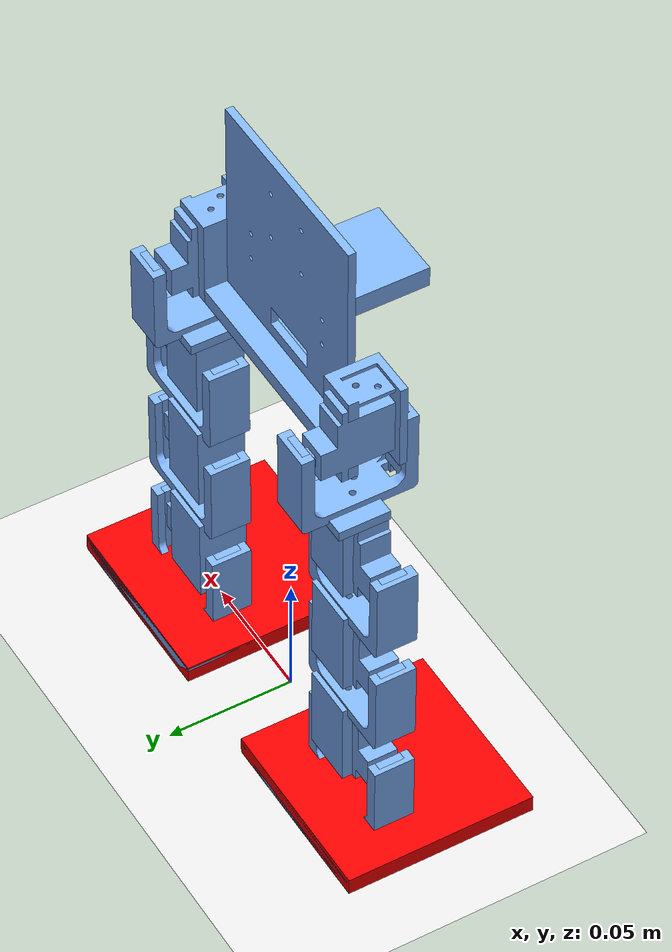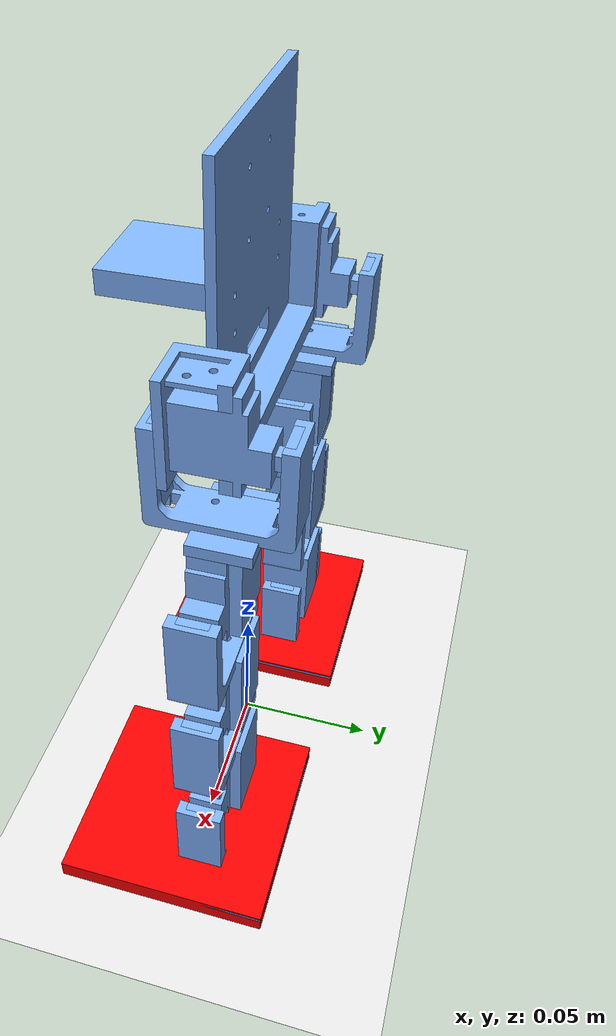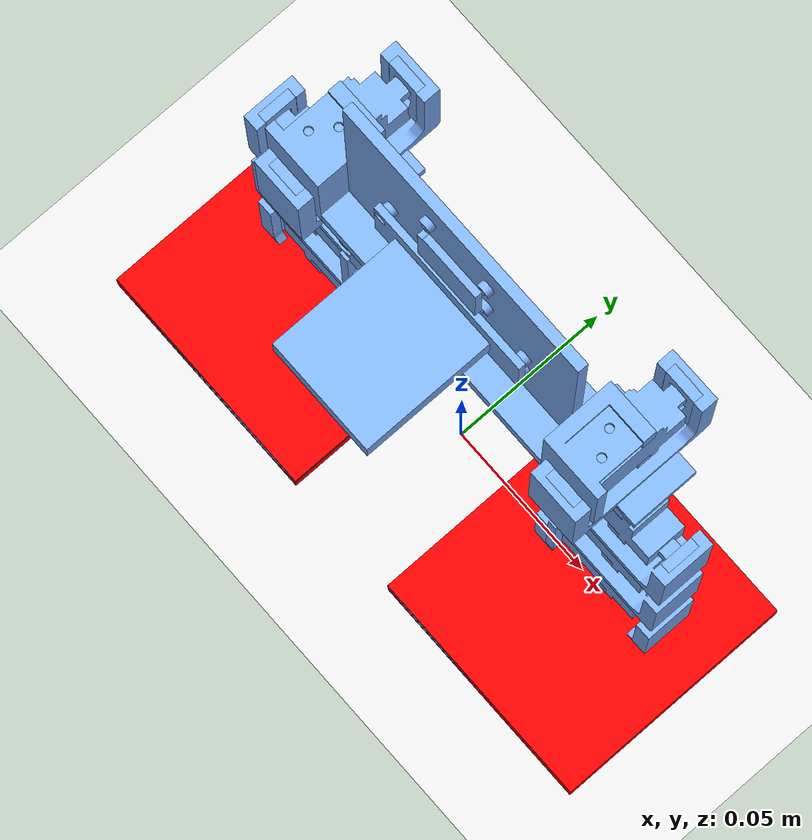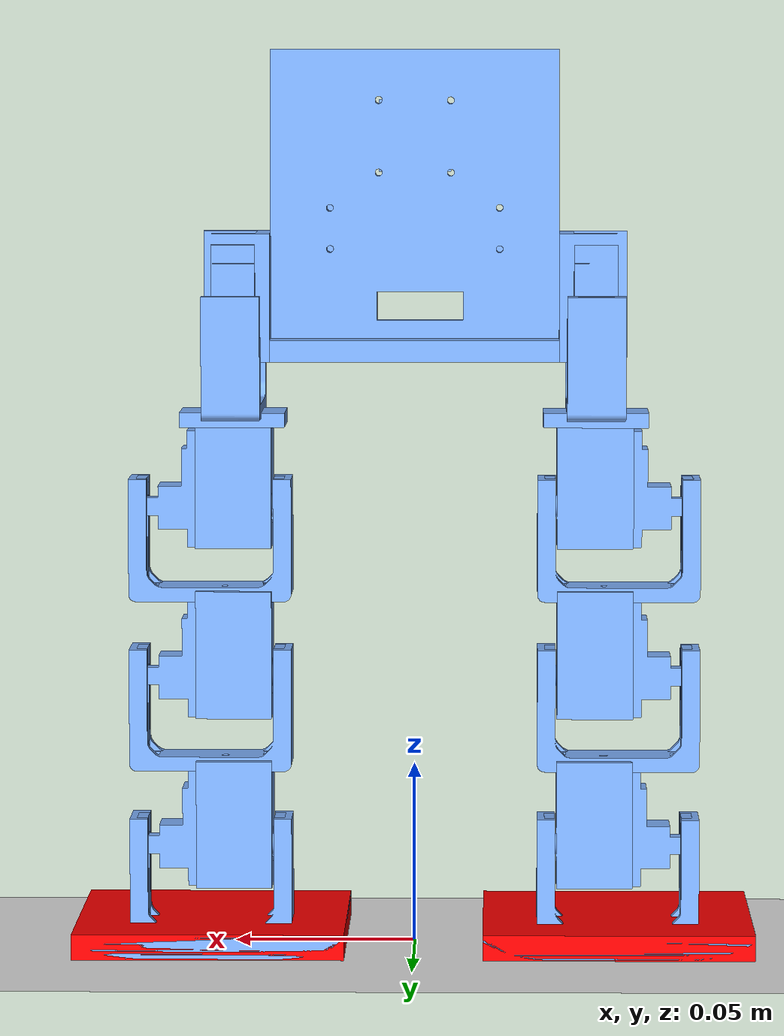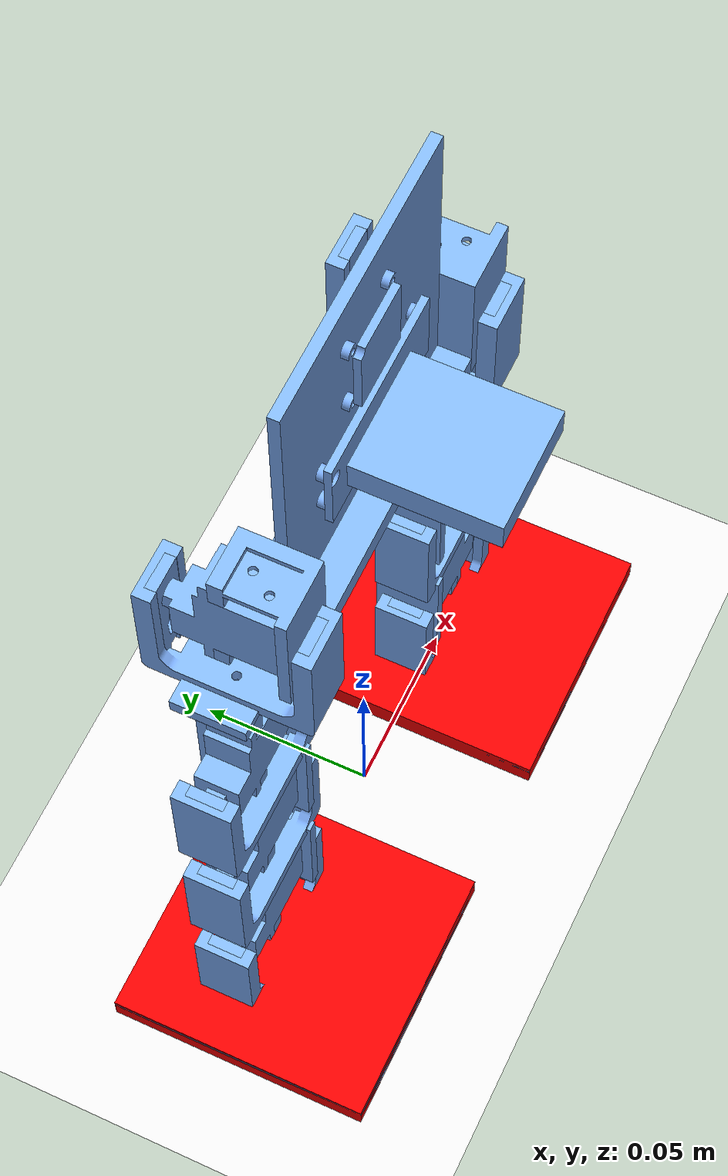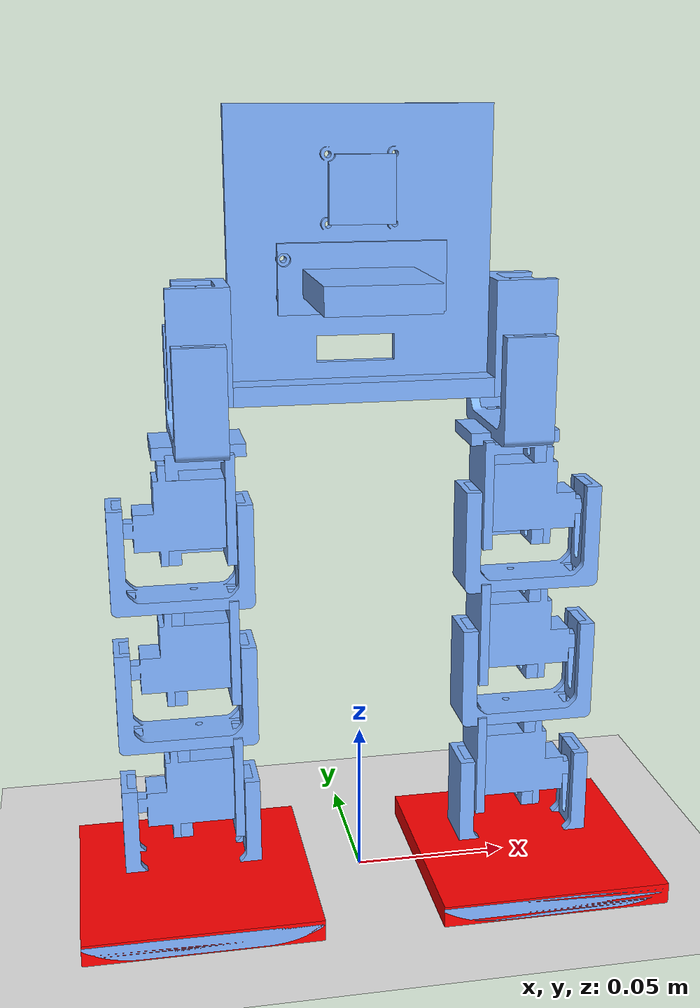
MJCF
<?xml version="1.0" ?>
<mujoco model="v4Robot_v70">
  <compiler angle="radian"/>
  <default>
    <mesh scale="0.001 0.001 0.001"/>
    <geom rgba="0.5 0.7 1.0 1" contype="0" conaffinity="0"/>
    <joint damping="0.002" range="-1.5 1.5" armature="0.0005"/>
    <position kp="3" kv="0.01" forcelimited="true" forcerange="-0.1 0.1" ctrllimited="true" ctrlrange="-1.57 1.57"/>
  </default>
  <asset>
    <mesh file="meshes/body_1+motorMountU_v7_3.stl" name="body_1+motorMountU_v7_3_mesh"/>
    <mesh file="meshes/body_1+motorMountU_v7(Mirror)_1.stl" name="body_1+motorMountU_v7(Mirror)_1_mesh"/>
    <mesh file="meshes/rollAttachment_1+horn_slide_v23_1+servo_v10_1.stl" name="rollAttachment_1+horn_slide_v23_1+servo_v10_1_mesh"/>
    <mesh file="meshes/rollAttachment_1+horn_slide_v23_1+horn_slider_1.stl" name="rollAttachment_1+horn_slide_v23_1+horn_slider_1_mesh"/>
    <mesh file="meshes/rollAttachment_1+horn_slide_v23_1+slide_u_1.stl" name="rollAttachment_1+horn_slide_v23_1+slide_u_1_mesh"/>
    <mesh file="meshes/rollAttachment_1+horn_slide_v23_1+bearing_slider_1.stl" name="rollAttachment_1+horn_slide_v23_1+bearing_slider_1_mesh"/>
    <mesh file="meshes/rollAttachment_1+motorMountU_v7_1.stl" name="rollAttachment_1+motorMountU_v7_1_mesh"/>
    <mesh file="meshes/leg_1+horn_slide_v23_2+servo_v10_1.stl" name="leg_1+horn_slide_v23_2+servo_v10_1_mesh"/>
    <mesh file="meshes/leg_1+horn_slide_v23_2+horn_slider_1.stl" name="leg_1+horn_slide_v23_2+horn_slider_1_mesh"/>
    <mesh file="meshes/leg_1+horn_slide_v23_2+slide_u_1.stl" name="leg_1+horn_slide_v23_2+slide_u_1_mesh"/>
    <mesh file="meshes/leg_1+horn_slide_v23_2+bearing_slider_1.stl" name="leg_1+horn_slide_v23_2+bearing_slider_1_mesh"/>
    <mesh file="meshes/leg_1+motorMountU_v7_2.stl" name="leg_1+motorMountU_v7_2_mesh"/>
    <mesh file="meshes/leg_2+horn_slide_v23_2+servo_v10_1.stl" name="leg_2+horn_slide_v23_2+servo_v10_1_mesh"/>
    <mesh file="meshes/leg_2+horn_slide_v23_2+horn_slider_1.stl" name="leg_2+horn_slide_v23_2+horn_slider_1_mesh"/>
    <mesh file="meshes/leg_2+horn_slide_v23_2+slide_u_1.stl" name="leg_2+horn_slide_v23_2+slide_u_1_mesh"/>
    <mesh file="meshes/leg_2+horn_slide_v23_2+bearing_slider_1.stl" name="leg_2+horn_slide_v23_2+bearing_slider_1_mesh"/>
    <mesh file="meshes/leg_2+motorMountU_v7_2.stl" name="leg_2+motorMountU_v7_2_mesh"/>
    <mesh file="meshes/foot_1+horn_slide_v23_3+servo_v10_1.stl" name="foot_1+horn_slide_v23_3+servo_v10_1_mesh"/>
    <mesh file="meshes/foot_1+horn_slide_v23_3+horn_slider_1.stl" name="foot_1+horn_slide_v23_3+horn_slider_1_mesh"/>
    <mesh file="meshes/foot_1+horn_slide_v23_3+slide_u_1.stl" name="foot_1+horn_slide_v23_3+slide_u_1_mesh"/>
    <mesh file="meshes/foot_1+horn_slide_v23_3+bearing_slider_1.stl" name="foot_1+horn_slide_v23_3+bearing_slider_1_mesh"/>
    <mesh file="meshes/foot_1+Component54_1.stl" name="foot_1+Component54_1_mesh"/>
    <mesh file="meshes/rollAttachment_1+connector_1.stl" name="rollAttachment_1+connector_1_mesh"/>
    <mesh file="meshes/body_1+body_(1)_1.stl" name="body_1+body_(1)_1_mesh"/>
    <mesh file="meshes/rollAttachment(Mirror)_1+horn_slide_v23(Mirror)_1+servo_v10(Mirror)_1.stl" name="rollAttachment(Mirror)_1+horn_slide_v23(Mirror)_1+servo_v10(Mirror)_1_mesh"/>
    <mesh file="meshes/rollAttachment(Mirror)_1+horn_slide_v23(Mirror)_1+horn_slider(Mirror)_1.stl" name="rollAttachment(Mirror)_1+horn_slide_v23(Mirror)_1+horn_slider(Mirror)_1_mesh"/>
    <mesh file="meshes/rollAttachment(Mirror)_1+horn_slide_v23(Mirror)_1+slide_u(Mirror)_1.stl" name="rollAttachment(Mirror)_1+horn_slide_v23(Mirror)_1+slide_u(Mirror)_1_mesh"/>
    <mesh file="meshes/rollAttachment(Mirror)_1+horn_slide_v23(Mirror)_1+bearing_slider(Mirror)_1.stl" name="rollAttachment(Mirror)_1+horn_slide_v23(Mirror)_1+bearing_slider(Mirror)_1_mesh"/>
    <mesh file="meshes/rollAttachment(Mirror)_1+connector(Mirror)_1.stl" name="rollAttachment(Mirror)_1+connector(Mirror)_1_mesh"/>
    <mesh file="meshes/rollAttachment(Mirror)_1+motorMountU_v7(Mirror)_(1)_1.stl" name="rollAttachment(Mirror)_1+motorMountU_v7(Mirror)_(1)_1_mesh"/>
    <mesh file="meshes/leg(Mirror)_1+horn_slide_v23(Mirror)_(1)_1+servo_v10(Mirror)_(1)_1.stl" name="leg(Mirror)_1+horn_slide_v23(Mirror)_(1)_1+servo_v10(Mirror)_(1)_1_mesh"/>
    <mesh file="meshes/leg(Mirror)_1+horn_slide_v23(Mirror)_(1)_1+horn_slider(Mirror)_(1)_1.stl" name="leg(Mirror)_1+horn_slide_v23(Mirror)_(1)_1+horn_slider(Mirror)_(1)_1_mesh"/>
    <mesh file="meshes/leg(Mirror)_1+horn_slide_v23(Mirror)_(1)_1+slide_u(Mirror)_(1)_1.stl" name="leg(Mirror)_1+horn_slide_v23(Mirror)_(1)_1+slide_u(Mirror)_(1)_1_mesh"/>
    <mesh file="meshes/leg(Mirror)_1+horn_slide_v23(Mirror)_(1)_1+bearing_slider(Mirror)_(1)_1.stl" name="leg(Mirror)_1+horn_slide_v23(Mirror)_(1)_1+bearing_slider(Mirror)_(1)_1_mesh"/>
    <mesh file="meshes/leg(Mirror)_1+motorMountU_v7(Mirror)_(2)_1.stl" name="leg(Mirror)_1+motorMountU_v7(Mirror)_(2)_1_mesh"/>
    <mesh file="meshes/leg(Mirror)_(1)_1+horn_slide_v23(Mirror)_(2)_1+servo_v10(Mirror)_(2)_1.stl" name="leg(Mirror)_(1)_1+horn_slide_v23(Mirror)_(2)_1+servo_v10(Mirror)_(2)_1_mesh"/>
    <mesh file="meshes/leg(Mirror)_(1)_1+horn_slide_v23(Mirror)_(2)_1+horn_slider(Mirror)_(2)_1.stl" name="leg(Mirror)_(1)_1+horn_slide_v23(Mirror)_(2)_1+horn_slider(Mirror)_(2)_1_mesh"/>
    <mesh file="meshes/leg(Mirror)_(1)_1+horn_slide_v23(Mirror)_(2)_1+slide_u(Mirror)_(2)_1.stl" name="leg(Mirror)_(1)_1+horn_slide_v23(Mirror)_(2)_1+slide_u(Mirror)_(2)_1_mesh"/>
    <mesh file="meshes/leg(Mirror)_(1)_1+horn_slide_v23(Mirror)_(2)_1+bearing_slider(Mirror)_(2)_1.stl" name="leg(Mirror)_(1)_1+horn_slide_v23(Mirror)_(2)_1+bearing_slider(Mirror)_(2)_1_mesh"/>
    <mesh file="meshes/leg(Mirror)_(1)_1+motorMountU_v7(Mirror)_(3)_1.stl" name="leg(Mirror)_(1)_1+motorMountU_v7(Mirror)_(3)_1_mesh"/>
    <mesh file="meshes/foot(Mirror)_(1)_1+horn_slide_v23(Mirror)_(4)_1+servo_v10(Mirror)_(4)_1.stl" name="foot(Mirror)_(1)_1+horn_slide_v23(Mirror)_(4)_1+servo_v10(Mirror)_(4)_1_mesh"/>
    <mesh file="meshes/foot(Mirror)_(1)_1+horn_slide_v23(Mirror)_(4)_1+horn_slider(Mirror)_(4)_1.stl" name="foot(Mirror)_(1)_1+horn_slide_v23(Mirror)_(4)_1+horn_slider(Mirror)_(4)_1_mesh"/>
    <mesh file="meshes/foot(Mirror)_(1)_1+horn_slide_v23(Mirror)_(4)_1+slide_u(Mirror)_(4)_1.stl" name="foot(Mirror)_(1)_1+horn_slide_v23(Mirror)_(4)_1+slide_u(Mirror)_(4)_1_mesh"/>
    <mesh file="meshes/foot(Mirror)_(1)_1+horn_slide_v23(Mirror)_(4)_1+bearing_slider(Mirror)_(4)_1.stl" name="foot(Mirror)_(1)_1+horn_slide_v23(Mirror)_(4)_1+bearing_slider(Mirror)_(4)_1_mesh"/>
    <mesh file="meshes/foot(Mirror)_(1)_1+Component54(Mirror)_(1)_1.stl" name="foot(Mirror)_(1)_1+Component54(Mirror)_(1)_1_mesh"/>
    <mesh file="meshes/body_1+pi_holder_v2_1.stl" name="body_1+pi_holder_v2_1_mesh"/>
    <mesh file="meshes/body_1+pico_1.stl" name="body_1+pico_1_mesh"/>
    <mesh file="meshes/body_1+imu_1.stl" name="body_1+imu_1_mesh"/>
  </asset>
  <actuator>
    <position name="rollAttachment_1+horn_slide_v23_1+horn_slider_1Revolute_3" joint="rollAttachment_1+horn_slide_v23_1+horn_slider_1Revolute_3"/>
    <position name="leg_1+horn_slide_v23_2+horn_slider_1Revolute_3" joint="leg_1+horn_slide_v23_2+horn_slider_1Revolute_3"/>
    <position name="leg_2+horn_slide_v23_2+horn_slider_1Revolute_3" joint="leg_2+horn_slide_v23_2+horn_slider_1Revolute_3"/>
    <position name="foot_1+horn_slide_v23_3+horn_slider_1Revolute_3" joint="foot_1+horn_slide_v23_3+horn_slider_1Revolute_3"/>
    <position name="rollAttachment(Mirror)_1+horn_slide_v23(Mirror)_1+horn_slider(Mirror)_1Revolute_3" joint="rollAttachment(Mirror)_1+horn_slide_v23(Mirror)_1+horn_slider(Mirror)_1Revolute_3"/>
    <position name="leg(Mirror)_1+horn_slide_v23(Mirror)_(1)_1+horn_slider(Mirror)_(1)_1Revolute_5" joint="leg(Mirror)_1+horn_slide_v23(Mirror)_(1)_1+horn_slider(Mirror)_(1)_1Revolute_5"/>
    <position name="leg(Mirror)_(1)_1+horn_slide_v23(Mirror)_(2)_1+horn_slider(Mirror)_(2)_1Revolute_3" joint="leg(Mirror)_(1)_1+horn_slide_v23(Mirror)_(2)_1+horn_slider(Mirror)_(2)_1Revolute_3"/>
    <position name="foot(Mirror)_(1)_1+horn_slide_v23(Mirror)_(4)_1+horn_slider(Mirror)_(4)_1Revolute_3" joint="foot(Mirror)_(1)_1+horn_slide_v23(Mirror)_(4)_1+horn_slider(Mirror)_(4)_1Revolute_3"/>
  </actuator>
  <worldbody>
    <geom name="floor" size="0 0 .05" type="plane" condim="3" rgba="0.9 0.9 0.9 1" contype="1" conaffinity="1"/>
    <light mode="targetbodycom" target="body" diffuse=".8 .8 .8" specular="0.3 0.3 0.3" pos="0 -6 4" cutoff="30"/>
    <body name="body">
      <freejoint name="root"/>
      <geom density="186" type="mesh" mesh="body_1+motorMountU_v7_3_mesh"/>
      <geom density="186" type="mesh" mesh="body_1+motorMountU_v7(Mirror)_1_mesh"/>
      <body name="rollAttachment_1+horn_slide_v23_1+servo_v10_1">
        <geom mass="0.0134" type="mesh" mesh="rollAttachment_1+horn_slide_v23_1+servo_v10_1_mesh"/>
        <body name="rollAttachment_1+horn_slide_v23_1+horn_slider_1">
          <joint axis="0 1 0" name="rollAttachment_1+horn_slide_v23_1+horn_slider_1Revolute_3" type="hinge" pos="0.0500 0.0265 0.1707"/>
          <geom density="186" type="mesh" mesh="rollAttachment_1+horn_slide_v23_1+horn_slider_1_mesh"/>
          <body name="rollAttachment_1+horn_slide_v23_1+slide_u_1">
            <geom density="186" type="mesh" mesh="rollAttachment_1+horn_slide_v23_1+slide_u_1_mesh"/>
            <body name="rollAttachment_1+horn_slide_v23_1+bearing_slider_1">
              <geom density="186" type="mesh" mesh="rollAttachment_1+horn_slide_v23_1+bearing_slider_1_mesh"/>
            </body>
            <body name="rollAttachment_1+motorMountU_v7_1">
              <geom density="186" type="mesh" mesh="rollAttachment_1+motorMountU_v7_1_mesh"/>
              <body name="leg_1+horn_slide_v23_2+servo_v10_1">
                <geom mass="0.0134" type="mesh" mesh="leg_1+horn_slide_v23_2+servo_v10_1_mesh"/>
                <body name="leg_1+horn_slide_v23_2+horn_slider_1">
                  <joint axis="1 0 0" name="leg_1+horn_slide_v23_2+horn_slider_1Revolute_3" type="hinge" pos="0.0765 0.0046 0.1193"/>
                  <geom density="186" type="mesh" mesh="leg_1+horn_slide_v23_2+horn_slider_1_mesh"/>
                  <body name="leg_1+horn_slide_v23_2+slide_u_1">
                    <geom density="186" type="mesh" mesh="leg_1+horn_slide_v23_2+slide_u_1_mesh"/>
                    <body name="leg_1+horn_slide_v23_2+bearing_slider_1">
                      <geom density="186" type="mesh" mesh="leg_1+horn_slide_v23_2+bearing_slider_1_mesh"/>
                    </body>
                    <body name="leg_1+motorMountU_v7_2">
                      <geom density="186" type="mesh" mesh="leg_1+motorMountU_v7_2_mesh"/>
                      <body name="leg_2+horn_slide_v23_2+servo_v10_1">
                        <geom mass="0.0134" type="mesh" mesh="leg_2+horn_slide_v23_2+servo_v10_1_mesh"/>
                        <body name="leg_2+horn_slide_v23_2+horn_slider_1">
                          <joint axis="1 0 0" name="leg_2+horn_slide_v23_2+horn_slider_1Revolute_3" type="hinge" pos="0.0765 0.0046 0.0719"/>
                          <geom density="186" type="mesh" mesh="leg_2+horn_slide_v23_2+horn_slider_1_mesh"/>
                          <body name="leg_2+horn_slide_v23_2+slide_u_1">
                            <geom density="186" type="mesh" mesh="leg_2+horn_slide_v23_2+slide_u_1_mesh"/>
                            <body name="leg_2+horn_slide_v23_2+bearing_slider_1">
                              <geom density="186" type="mesh" mesh="leg_2+horn_slide_v23_2+bearing_slider_1_mesh"/>
                            </body>
                            <body name="leg_2+motorMountU_v7_2">
                              <geom density="186" type="mesh" mesh="leg_2+motorMountU_v7_2_mesh"/>
                              <body name="foot_1+horn_slide_v23_3+servo_v10_1">
                                <geom mass="0.0134" type="mesh" mesh="foot_1+horn_slide_v23_3+servo_v10_1_mesh"/>
                                <body name="foot_1+horn_slide_v23_3+horn_slider_1">
                                  <joint axis="1 0 0" name="foot_1+horn_slide_v23_3+horn_slider_1Revolute_3" type="hinge" pos="0.0765 0.0046 0.0245"/>
                                  <geom density="186" type="mesh" mesh="foot_1+horn_slide_v23_3+horn_slider_1_mesh"/>
                                  <body name="foot_1+horn_slide_v23_3+slide_u_1">
                                    <geom density="186" type="mesh" mesh="foot_1+horn_slide_v23_3+slide_u_1_mesh"/>
                                    <body name="foot_1+horn_slide_v23_3+bearing_slider_1">
                                      <geom density="186" type="mesh" mesh="foot_1+horn_slide_v23_3+bearing_slider_1_mesh"/>
                                    </body>
                                    <body name="foot_1+Component54_1">
                                      <geom density="186" type="mesh" mesh="foot_1+Component54_1_mesh"/>
                                      <geom name="left_foot_collision" type="box" pos="0.0566 -0.0059 0.00262132" size="0.0375 0.0375 0.00412132" contype="1" conaffinity="1" rgba="1 0 0 1" density="0"/>
                                      <site name="left_foot_center" pos="0.0566 -0.0059 -0.0015" size="0.003" type="sphere" rgba="1 0 0 1"/>
                                    </body>
                                  </body>
                                </body>
                              </body>
                            </body>
                          </body>
                        </body>
                      </body>
                    </body>
                  </body>
                </body>
              </body>
            </body>
            <body name="rollAttachment_1+connector_1">
              <geom density="186" type="mesh" mesh="rollAttachment_1+connector_1_mesh"/>
            </body>
          </body>
        </body>
      </body>
      <body name="body_1+body_(1)_1">
        <geom density="186" type="mesh" mesh="body_1+body_(1)_1_mesh"/>
      </body>
      <body name="rollAttachment(Mirror)_1+horn_slide_v23(Mirror)_1+servo_v10(Mirror)_1">
        <geom mass="0.0134" type="mesh" mesh="rollAttachment(Mirror)_1+horn_slide_v23(Mirror)_1+servo_v10(Mirror)_1_mesh"/>
        <body name="rollAttachment(Mirror)_1+horn_slide_v23(Mirror)_1+horn_slider(Mirror)_1">
          <joint axis="0 1 0" name="rollAttachment(Mirror)_1+horn_slide_v23(Mirror)_1+horn_slider(Mirror)_1Revolute_3" type="hinge" pos="-0.0500 0.0265 0.1707"/>
          <geom density="186" type="mesh" mesh="rollAttachment(Mirror)_1+horn_slide_v23(Mirror)_1+horn_slider(Mirror)_1_mesh"/>
          <body name="rollAttachment(Mirror)_1+horn_slide_v23(Mirror)_1+slide_u(Mirror)_1">
            <geom density="186" type="mesh" mesh="rollAttachment(Mirror)_1+horn_slide_v23(Mirror)_1+slide_u(Mirror)_1_mesh"/>
            <body name="rollAttachment(Mirror)_1+horn_slide_v23(Mirror)_1+bearing_slider(Mirror)_1">
              <geom density="186" type="mesh" mesh="rollAttachment(Mirror)_1+horn_slide_v23(Mirror)_1+bearing_slider(Mirror)_1_mesh"/>
            </body>
            <body name="rollAttachment(Mirror)_1+connector(Mirror)_1">
              <geom density="186" type="mesh" mesh="rollAttachment(Mirror)_1+connector(Mirror)_1_mesh"/>
              <body name="rollAttachment(Mirror)_1+motorMountU_v7(Mirror)_(1)_1">
                <geom density="186" type="mesh" mesh="rollAttachment(Mirror)_1+motorMountU_v7(Mirror)_(1)_1_mesh"/>
                <body name="leg(Mirror)_1+horn_slide_v23(Mirror)_(1)_1+servo_v10(Mirror)_(1)_1">
                  <geom mass="0.0134" type="mesh" mesh="leg(Mirror)_1+horn_slide_v23(Mirror)_(1)_1+servo_v10(Mirror)_(1)_1_mesh"/>
                  <body name="leg(Mirror)_1+horn_slide_v23(Mirror)_(1)_1+horn_slider(Mirror)_(1)_1">
                    <joint axis="-1 0 0" name="leg(Mirror)_1+horn_slide_v23(Mirror)_(1)_1+horn_slider(Mirror)_(1)_1Revolute_5" type="hinge" pos="-0.0765 0.0046 0.1193"/>
                    <geom density="186" type="mesh" mesh="leg(Mirror)_1+horn_slide_v23(Mirror)_(1)_1+horn_slider(Mirror)_(1)_1_mesh"/>
                    <body name="leg(Mirror)_1+horn_slide_v23(Mirror)_(1)_1+slide_u(Mirror)_(1)_1">
                      <geom density="186" type="mesh" mesh="leg(Mirror)_1+horn_slide_v23(Mirror)_(1)_1+slide_u(Mirror)_(1)_1_mesh"/>
                      <body name="leg(Mirror)_1+horn_slide_v23(Mirror)_(1)_1+bearing_slider(Mirror)_(1)_1">
                        <geom density="186" type="mesh" mesh="leg(Mirror)_1+horn_slide_v23(Mirror)_(1)_1+bearing_slider(Mirror)_(1)_1_mesh"/>
                      </body>
                      <body name="leg(Mirror)_1+motorMountU_v7(Mirror)_(2)_1">
                        <geom density="186" type="mesh" mesh="leg(Mirror)_1+motorMountU_v7(Mirror)_(2)_1_mesh"/>
                        <body name="leg(Mirror)_(1)_1+horn_slide_v23(Mirror)_(2)_1+servo_v10(Mirror)_(2)_1">
                          <geom mass="0.0134" type="mesh" mesh="leg(Mirror)_(1)_1+horn_slide_v23(Mirror)_(2)_1+servo_v10(Mirror)_(2)_1_mesh"/>
                          <body name="leg(Mirror)_(1)_1+horn_slide_v23(Mirror)_(2)_1+horn_slider(Mirror)_(2)_1">
                            <joint axis="-1 0 0" name="leg(Mirror)_(1)_1+horn_slide_v23(Mirror)_(2)_1+horn_slider(Mirror)_(2)_1Revolute_3" type="hinge" pos="-0.0765 0.0046 0.0719"/>
                            <geom density="186" type="mesh" mesh="leg(Mirror)_(1)_1+horn_slide_v23(Mirror)_(2)_1+horn_slider(Mirror)_(2)_1_mesh"/>
                            <body name="leg(Mirror)_(1)_1+horn_slide_v23(Mirror)_(2)_1+slide_u(Mirror)_(2)_1">
                              <geom density="186" type="mesh" mesh="leg(Mirror)_(1)_1+horn_slide_v23(Mirror)_(2)_1+slide_u(Mirror)_(2)_1_mesh"/>
                              <body name="leg(Mirror)_(1)_1+horn_slide_v23(Mirror)_(2)_1+bearing_slider(Mirror)_(2)_1">
                                <geom density="186" type="mesh" mesh="leg(Mirror)_(1)_1+horn_slide_v23(Mirror)_(2)_1+bearing_slider(Mirror)_(2)_1_mesh"/>
                              </body>
                              <body name="leg(Mirror)_(1)_1+motorMountU_v7(Mirror)_(3)_1">
                                <geom density="186" type="mesh" mesh="leg(Mirror)_(1)_1+motorMountU_v7(Mirror)_(3)_1_mesh"/>
                                <body name="foot(Mirror)_(1)_1+horn_slide_v23(Mirror)_(4)_1+servo_v10(Mirror)_(4)_1">
                                  <geom mass="0.0134" type="mesh" mesh="foot(Mirror)_(1)_1+horn_slide_v23(Mirror)_(4)_1+servo_v10(Mirror)_(4)_1_mesh"/>
                                  <body name="foot(Mirror)_(1)_1+horn_slide_v23(Mirror)_(4)_1+horn_slider(Mirror)_(4)_1">
                                    <joint axis="-1 0 0" name="foot(Mirror)_(1)_1+horn_slide_v23(Mirror)_(4)_1+horn_slider(Mirror)_(4)_1Revolute_3" type="hinge" pos="-0.0765 0.0046 0.0245"/>
                                    <geom density="186" type="mesh" mesh="foot(Mirror)_(1)_1+horn_slide_v23(Mirror)_(4)_1+horn_slider(Mirror)_(4)_1_mesh"/>
                                    <body name="foot(Mirror)_(1)_1+horn_slide_v23(Mirror)_(4)_1+slide_u(Mirror)_(4)_1">
                                      <geom density="186" type="mesh" mesh="foot(Mirror)_(1)_1+horn_slide_v23(Mirror)_(4)_1+slide_u(Mirror)_(4)_1_mesh"/>
                                      <body name="foot(Mirror)_(1)_1+horn_slide_v23(Mirror)_(4)_1+bearing_slider(Mirror)_(4)_1">
                                        <geom density="186" type="mesh" mesh="foot(Mirror)_(1)_1+horn_slide_v23(Mirror)_(4)_1+bearing_slider(Mirror)_(4)_1_mesh"/>
                                      </body>
                                      <body name="foot(Mirror)_(1)_1+Component54(Mirror)_(1)_1">
                                        <geom density="186" type="mesh" mesh="foot(Mirror)_(1)_1+Component54(Mirror)_(1)_1_mesh"/>
                                        <geom name="right_foot_collision" type="box" pos="-0.0566 -0.0059 0.00262132" size="0.0375 0.0375 0.00412132" contype="1" conaffinity="1" rgba="1 0 0 1" density="0"/>
                                        <site name="right_foot_center" pos="-0.0566 -0.0059 -0.0015" size="0.003" type="sphere" rgba="1 0 0 1"/>
                                      </body>
                                    </body>
                                  </body>
                                </body>
                              </body>
                            </body>
                          </body>
                        </body>
                      </body>
                    </body>
                  </body>
                </body>
              </body>
            </body>
          </body>
        </body>
      </body>
      <body name="body_1+pi_holder_v2_1">
        <geom density="186" type="mesh" mesh="body_1+pi_holder_v2_1_mesh"/>
        <body name="body_1+pico_1">
          <geom density="186" type="mesh" mesh="body_1+pico_1_mesh"/>
        </body>
        <body name="body_1+imu_1">
          <geom density="186" type="mesh" mesh="body_1+imu_1_mesh"/>
        </body>
      </body>
    </body>
    <camera name="track" mode="trackcom" pos="0 -2.1 0.5" xyaxes="1 0 0 0 0.2 1" target="body"/>
  </worldbody>
</mujoco>
